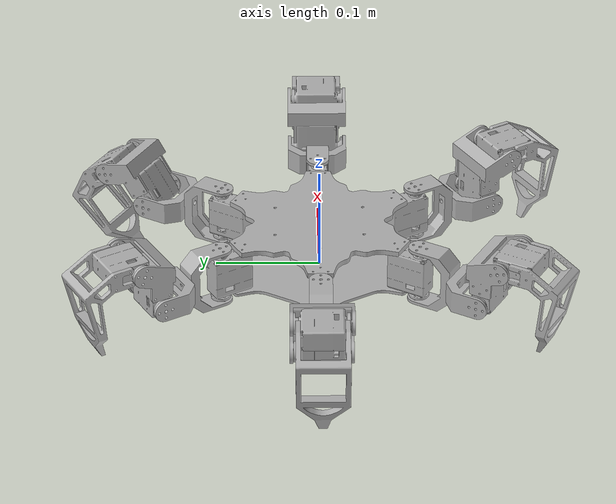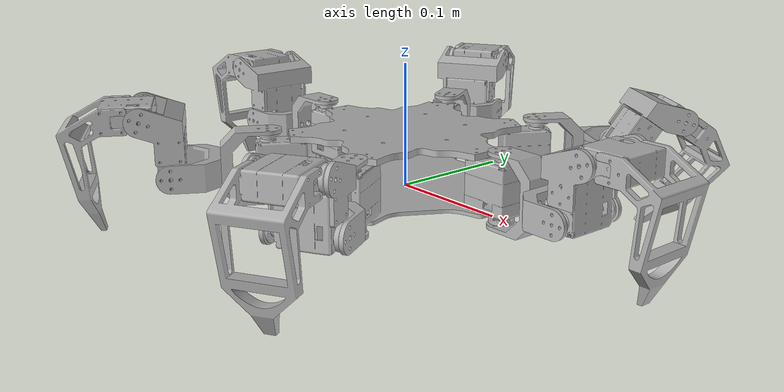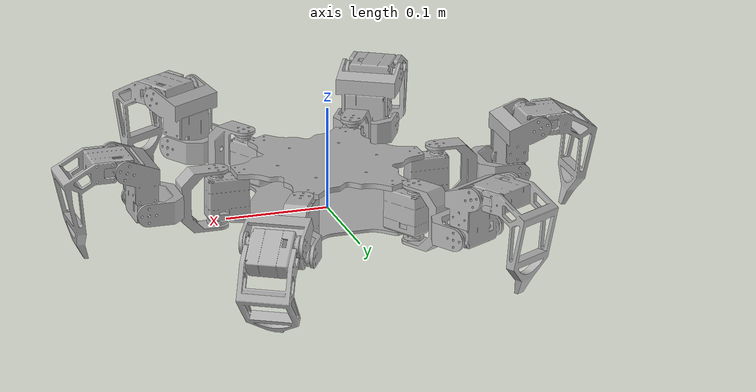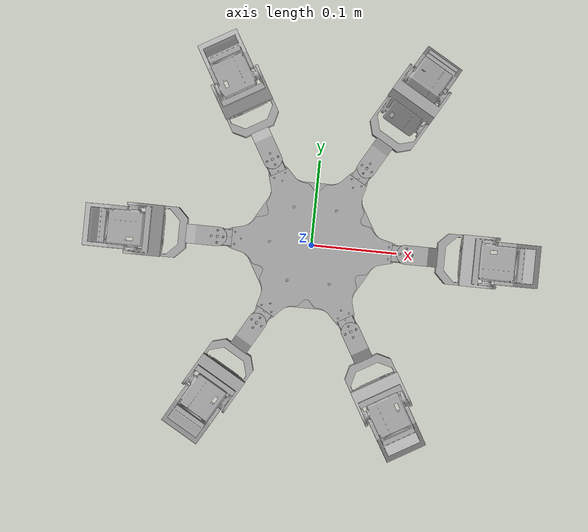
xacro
<?xml version="1.0" ?>
<robot name="assembly_Final_urdf_made_of" xmlns:xacro="http://www.ros.org/wiki/xacro">

<xacro:include filename="$(find assembly_Final_urdf_made_of_description)/urdf/materials.xacro" />
<xacro:include filename="$(find assembly_Final_urdf_made_of_description)/urdf/assembly_Final_urdf_made_of.trans" />
<xacro:include filename="$(find assembly_Final_urdf_made_of_description)/urdf/assembly_Final_urdf_made_of.gazebo" />
<link name="base_link">
  <inertial>
    <origin xyz="-1.7404090197208611e-06 2.397418554504474e-06 0.0008277383370028244" rpy="0 0 0"/>
    <mass value="0.09456404470336192"/>
    <inertia ixx="0.000152" iyy="0.000152" izz="0.000303" ixy="0.0" iyz="-0.0" ixz="0.0"/>
  </inertial>
  <visual>
    <origin xyz="0 0 0" rpy="0 0 0"/>
    <geometry>
      <mesh filename="package://assembly_Final_urdf_made_of_description/meshes/base_link.stl" scale="0.001 0.001 0.001"/>
    </geometry>
    <material name="silver"/>
  </visual>
  <collision>
    <origin xyz="0 0 0" rpy="0 0 0"/>
    <geometry>
      <mesh filename="package://assembly_Final_urdf_made_of_description/meshes/base_link.stl" scale="0.001 0.001 0.001"/>
    </geometry>
  </collision>
</link>

<link name="Fixed_joint_1_2__v3_1">
  <inertial>
    <origin xyz="0.010972805738787339 0.010956586754343384 5.977675751611677e-08" rpy="0 0 0"/>
    <mass value="0.011256598883823797"/>
    <inertia ixx="3e-06" iyy="5e-06" izz="7e-06" ixy="1e-06" iyz="0.0" ixz="0.0"/>
  </inertial>
  <visual>
    <origin xyz="-0.069586 -0.128526 -0.02295" rpy="0 0 0"/>
    <geometry>
      <mesh filename="package://assembly_Final_urdf_made_of_description/meshes/Fixed_joint_1_2__v3_1.stl" scale="0.001 0.001 0.001"/>
    </geometry>
    <material name="silver"/>
  </visual>
  <collision>
    <origin xyz="-0.069586 -0.128526 -0.02295" rpy="0 0 0"/>
    <geometry>
      <mesh filename="package://assembly_Final_urdf_made_of_description/meshes/Fixed_joint_1_2__v3_1.stl" scale="0.001 0.001 0.001"/>
    </geometry>
  </collision>
</link>

<link name="motor_1">
  <inertial>
    <origin xyz="-0.018338093053048496 0.01677782396606542 0.007656049817158811" rpy="0 0 0"/>
    <mass value="0.07982237365097052"/>
    <inertia ixx="1.5e-05" iyy="1.8e-05" izz="1.6e-05" ixy="2e-06" iyz="-3e-06" ixz="-2e-06"/>
  </inertial>
  <visual>
    <origin xyz="-0.11437 -0.145394 -0.02295" rpy="0 0 0"/>
    <geometry>
      <mesh filename="package://assembly_Final_urdf_made_of_description/meshes/motor_1.stl" scale="0.001 0.001 0.001"/>
    </geometry>
    <material name="silver"/>
  </visual>
  <collision>
    <origin xyz="-0.11437 -0.145394 -0.02295" rpy="0 0 0"/>
    <geometry>
      <mesh filename="package://assembly_Final_urdf_made_of_description/meshes/motor_1.stl" scale="0.001 0.001 0.001"/>
    </geometry>
  </collision>
</link>

<link name="Joint_2_v7_1">
  <inertial>
    <origin xyz="-0.00945987008689668 0.025185382841864723 0.009101924812263344" rpy="0 0 0"/>
    <mass value="0.014244669754106336"/>
    <inertia ixx="4e-06" iyy="7e-06" izz="8e-06" ixy="2e-06" iyz="0.0" ixz="-0.0"/>
  </inertial>
  <visual>
    <origin xyz="-0.111615 -0.153623 -0.043365" rpy="0 0 0"/>
    <geometry>
      <mesh filename="package://assembly_Final_urdf_made_of_description/meshes/Joint_2_v7_1.stl" scale="0.001 0.001 0.001"/>
    </geometry>
    <material name="silver"/>
  </visual>
  <collision>
    <origin xyz="-0.111615 -0.153623 -0.043365" rpy="0 0 0"/>
    <geometry>
      <mesh filename="package://assembly_Final_urdf_made_of_description/meshes/Joint_2_v7_1.stl" scale="0.001 0.001 0.001"/>
    </geometry>
  </collision>
</link>

<link name="fixed_joint_2_1">
  <inertial>
    <origin xyz="0.011012566806815144 0.0190746967865109 -0.026374619114394995" rpy="0 0 0"/>
    <mass value="0.011256598883823797"/>
    <inertia ixx="7e-06" iyy="6e-06" izz="3e-06" ixy="-1e-06" iyz="-0.0" ixz="-0.0"/>
  </inertial>
  <visual>
    <origin xyz="-0.05455 -0.094483 -0.0493" rpy="0 0 0"/>
    <geometry>
      <mesh filename="package://assembly_Final_urdf_made_of_description/meshes/fixed_joint_2_1.stl" scale="0.001 0.001 0.001"/>
    </geometry>
    <material name="silver"/>
  </visual>
  <collision>
    <origin xyz="-0.05455 -0.094483 -0.0493" rpy="0 0 0"/>
    <geometry>
      <mesh filename="package://assembly_Final_urdf_made_of_description/meshes/fixed_joint_2_1.stl" scale="0.001 0.001 0.001"/>
    </geometry>
  </collision>
</link>

<link name="motor_2">
  <inertial>
    <origin xyz="-0.01719037699469063 0.018765054863949443 -0.005361299149472275" rpy="0 0 0"/>
    <mass value="0.07982237365097052"/>
    <inertia ixx="1.4e-05" iyy="1.6e-05" izz="1.9e-05" ixy="1e-06" iyz="3e-06" ixz="2e-06"/>
  </inertial>
  <visual>
    <origin xyz="-0.135634 -0.182625 -0.048627" rpy="0 0 0"/>
    <geometry>
      <mesh filename="package://assembly_Final_urdf_made_of_description/meshes/motor_2.stl" scale="0.001 0.001 0.001"/>
    </geometry>
    <material name="silver"/>
  </visual>
  <collision>
    <origin xyz="-0.135634 -0.182625 -0.048627" rpy="0 0 0"/>
    <geometry>
      <mesh filename="package://assembly_Final_urdf_made_of_description/meshes/motor_2.stl" scale="0.001 0.001 0.001"/>
    </geometry>
  </collision>
</link>

<link name="leg_final_final_final_v2_1">
  <inertial>
    <origin xyz="-0.019518933007596523 0.006065157536419535 -0.033090882230042445" rpy="0 0 0"/>
    <mass value="0.020390738062841383"/>
    <inertia ixx="1.8e-05" iyy="1.7e-05" izz="1.2e-05" ixy="-0.0" iyz="-5e-06" ixz="-3e-06"/>
  </inertial>
  <visual>
    <origin xyz="-0.141072 -0.205043 -0.033129" rpy="0 0 0"/>
    <geometry>
      <mesh filename="package://assembly_Final_urdf_made_of_description/meshes/leg_final_final_final_v2_1.stl" scale="0.001 0.001 0.001"/>
    </geometry>
    <material name="silver"/>
  </visual>
  <collision>
    <origin xyz="-0.141072 -0.205043 -0.033129" rpy="0 0 0"/>
    <geometry>
      <mesh filename="package://assembly_Final_urdf_made_of_description/meshes/leg_final_final_final_v2_1.stl" scale="0.001 0.001 0.001"/>
    </geometry>
  </collision>
</link>

<link name="base_link_motor_1">
  <inertial>
    <origin xyz="0.002581790431811941 0.019471284014795517 0.022030159006889604" rpy="0 0 0"/>
    <mass value="0.07982237365097052"/>
    <inertia ixx="2e-05" iyy="1.6e-05" izz="1.3e-05" ixy="-4e-06" iyz="0.0" ixz="0.0"/>
  </inertial>
  <visual>
    <origin xyz="-0.047295 -0.066918 -0.003" rpy="0 0 0"/>
    <geometry>
      <mesh filename="package://assembly_Final_urdf_made_of_description/meshes/base_link_motor_1.stl" scale="0.001 0.001 0.001"/>
    </geometry>
    <material name="silver"/>
  </visual>
  <collision>
    <origin xyz="-0.047295 -0.066918 -0.003" rpy="0 0 0"/>
    <geometry>
      <mesh filename="package://assembly_Final_urdf_made_of_description/meshes/base_link_motor_1.stl" scale="0.001 0.001 0.001"/>
    </geometry>
  </collision>
</link>

<link name="base_link_motor_2">
  <inertial>
    <origin xyz="-0.015571919355655897 0.01197120958057929 0.02223015900688976" rpy="0 0 0"/>
    <mass value="0.07982237365097052"/>
    <inertia ixx="2e-05" iyy="1.6e-05" izz="1.3e-05" ixy="4e-06" iyz="0.0" ixz="-0.0"/>
  </inertial>
  <visual>
    <origin xyz="0.034305 -0.074418 -0.003" rpy="0 0 0"/>
    <geometry>
      <mesh filename="package://assembly_Final_urdf_made_of_description/meshes/base_link_motor_2.stl" scale="0.001 0.001 0.001"/>
    </geometry>
    <material name="silver"/>
  </visual>
  <collision>
    <origin xyz="0.034305 -0.074418 -0.003" rpy="0 0 0"/>
    <geometry>
      <mesh filename="package://assembly_Final_urdf_made_of_description/meshes/base_link_motor_2.stl" scale="0.001 0.001 0.001"/>
    </geometry>
  </collision>
</link>

<link name="base_link_motor_3">
  <inertial>
    <origin xyz="-0.01815370978746779 -0.007500074434216389 0.022230159006889492" rpy="0 0 0"/>
    <mass value="0.07982237365097052"/>
    <inertia ixx="1.4e-05" iyy="2.2e-05" izz="1.3e-05" ixy="0.0" iyz="-0.0" ixz="-0.0"/>
  </inertial>
  <visual>
    <origin xyz="0.0816 -0.0075 -0.003" rpy="0 0 0"/>
    <geometry>
      <mesh filename="package://assembly_Final_urdf_made_of_description/meshes/base_link_motor_3.stl" scale="0.001 0.001 0.001"/>
    </geometry>
    <material name="silver"/>
  </visual>
  <collision>
    <origin xyz="0.0816 -0.0075 -0.003" rpy="0 0 0"/>
    <geometry>
      <mesh filename="package://assembly_Final_urdf_made_of_description/meshes/base_link_motor_3.stl" scale="0.001 0.001 0.001"/>
    </geometry>
  </collision>
</link>

<link name="base_link_motor_4">
  <inertial>
    <origin xyz="-0.015571790431811977 -0.011971284014795608 0.02223015900688932" rpy="0 0 0"/>
    <mass value="0.07982237365097052"/>
    <inertia ixx="2e-05" iyy="1.6e-05" izz="1.3e-05" ixy="-4e-06" iyz="-0.0" ixz="-0.0"/>
  </inertial>
  <visual>
    <origin xyz="0.034305 0.074418 -0.003" rpy="0 0 0"/>
    <geometry>
      <mesh filename="package://assembly_Final_urdf_made_of_description/meshes/base_link_motor_4.stl" scale="0.001 0.001 0.001"/>
    </geometry>
    <material name="silver"/>
  </visual>
  <collision>
    <origin xyz="0.034305 0.074418 -0.003" rpy="0 0 0"/>
    <geometry>
      <mesh filename="package://assembly_Final_urdf_made_of_description/meshes/base_link_motor_4.stl" scale="0.001 0.001 0.001"/>
    </geometry>
  </collision>
</link>

<link name="base_link_motor_5">
  <inertial>
    <origin xyz="0.0025819193556557984 -0.019471209580579282 0.0222301590068896" rpy="0 0 0"/>
    <mass value="0.07982237365097052"/>
    <inertia ixx="2e-05" iyy="1.6e-05" izz="1.3e-05" ixy="4e-06" iyz="-0.0" ixz="0.0"/>
  </inertial>
  <visual>
    <origin xyz="-0.047295 0.066918 -0.003" rpy="0 0 0"/>
    <geometry>
      <mesh filename="package://assembly_Final_urdf_made_of_description/meshes/base_link_motor_5.stl" scale="0.001 0.001 0.001"/>
    </geometry>
    <material name="silver"/>
  </visual>
  <collision>
    <origin xyz="-0.047295 0.066918 -0.003" rpy="0 0 0"/>
    <geometry>
      <mesh filename="package://assembly_Final_urdf_made_of_description/meshes/base_link_motor_5.stl" scale="0.001 0.001 0.001"/>
    </geometry>
  </collision>
</link>

<link name="base_link_motor_6">
  <inertial>
    <origin xyz="0.018153709787467803 -0.007499925565783629 0.022230159006889502" rpy="0 0 0"/>
    <mass value="0.07982237365097052"/>
    <inertia ixx="1.4e-05" iyy="2.2e-05" izz="1.3e-05" ixy="0.0" iyz="0.0" ixz="0.0"/>
  </inertial>
  <visual>
    <origin xyz="-0.0816 -0.0075 -0.003" rpy="0 0 0"/>
    <geometry>
      <mesh filename="package://assembly_Final_urdf_made_of_description/meshes/base_link_motor_6.stl" scale="0.001 0.001 0.001"/>
    </geometry>
    <material name="silver"/>
  </visual>
  <collision>
    <origin xyz="-0.0816 -0.0075 -0.003" rpy="0 0 0"/>
    <geometry>
      <mesh filename="package://assembly_Final_urdf_made_of_description/meshes/base_link_motor_6.stl" scale="0.001 0.001 0.001"/>
    </geometry>
  </collision>
</link>

<link name="fixed_joint_2_6">
  <inertial>
    <origin xyz="0.022025133615776515 1.2398237991817496e-12 -0.02637461911439507" rpy="0 0 0"/>
    <mass value="0.011256598883823797"/>
    <inertia ixx="6e-06" iyy="7e-06" izz="3e-06" ixy="-0.0" iyz="-0.0" ixz="-0.0"/>
  </inertial>
  <visual>
    <origin xyz="-0.1091 0.0 -0.0495" rpy="0 0 0"/>
    <geometry>
      <mesh filename="package://assembly_Final_urdf_made_of_description/meshes/fixed_joint_2_6.stl" scale="0.001 0.001 0.001"/>
    </geometry>
    <material name="silver"/>
  </visual>
  <collision>
    <origin xyz="-0.1091 0.0 -0.0495" rpy="0 0 0"/>
    <geometry>
      <mesh filename="package://assembly_Final_urdf_made_of_description/meshes/fixed_joint_2_6.stl" scale="0.001 0.001 0.001"/>
    </geometry>
  </collision>
</link>

<link name="fixed_joint_2_5">
  <inertial>
    <origin xyz="0.011012566808961316 -0.019074696785271378 -0.02637461911439472" rpy="0 0 0"/>
    <mass value="0.011256598883823797"/>
    <inertia ixx="7e-06" iyy="6e-06" izz="3e-06" ixy="1e-06" iyz="0.0" ixz="-0.0"/>
  </inertial>
  <visual>
    <origin xyz="-0.05455 0.094483 -0.0495" rpy="0 0 0"/>
    <geometry>
      <mesh filename="package://assembly_Final_urdf_made_of_description/meshes/fixed_joint_2_5.stl" scale="0.001 0.001 0.001"/>
    </geometry>
    <material name="silver"/>
  </visual>
  <collision>
    <origin xyz="-0.05455 0.094483 -0.0495" rpy="0 0 0"/>
    <geometry>
      <mesh filename="package://assembly_Final_urdf_made_of_description/meshes/fixed_joint_2_5.stl" scale="0.001 0.001 0.001"/>
    </geometry>
  </collision>
</link>

<link name="fixed_joint_2_4">
  <inertial>
    <origin xyz="-0.011012566806815074 -0.01907469678651111 -0.026374619114395238" rpy="0 0 0"/>
    <mass value="0.011256598883823797"/>
    <inertia ixx="7e-06" iyy="6e-06" izz="3e-06" ixy="-1e-06" iyz="0.0" ixz="0.0"/>
  </inertial>
  <visual>
    <origin xyz="0.05455 0.094483 -0.0495" rpy="0 0 0"/>
    <geometry>
      <mesh filename="package://assembly_Final_urdf_made_of_description/meshes/fixed_joint_2_4.stl" scale="0.001 0.001 0.001"/>
    </geometry>
    <material name="silver"/>
  </visual>
  <collision>
    <origin xyz="0.05455 0.094483 -0.0495" rpy="0 0 0"/>
    <geometry>
      <mesh filename="package://assembly_Final_urdf_made_of_description/meshes/fixed_joint_2_4.stl" scale="0.001 0.001 0.001"/>
    </geometry>
  </collision>
</link>

<link name="fixed_joint_2_3">
  <inertial>
    <origin xyz="-0.022025133615776515 -1.2398482240882913e-12 -0.026374619114395044" rpy="0 0 0"/>
    <mass value="0.011256598883823797"/>
    <inertia ixx="6e-06" iyy="7e-06" izz="3e-06" ixy="-0.0" iyz="0.0" ixz="0.0"/>
  </inertial>
  <visual>
    <origin xyz="0.1091 0.0 -0.0495" rpy="0 0 0"/>
    <geometry>
      <mesh filename="package://assembly_Final_urdf_made_of_description/meshes/fixed_joint_2_3.stl" scale="0.001 0.001 0.001"/>
    </geometry>
    <material name="silver"/>
  </visual>
  <collision>
    <origin xyz="0.1091 0.0 -0.0495" rpy="0 0 0"/>
    <geometry>
      <mesh filename="package://assembly_Final_urdf_made_of_description/meshes/fixed_joint_2_3.stl" scale="0.001 0.001 0.001"/>
    </geometry>
  </collision>
</link>

<link name="fixed_joint_2_2">
  <inertial>
    <origin xyz="-0.011012566808961441 0.019074696785271475 -0.02637461911439456" rpy="0 0 0"/>
    <mass value="0.011256598883823797"/>
    <inertia ixx="7e-06" iyy="6e-06" izz="3e-06" ixy="1e-06" iyz="-0.0" ixz="0.0"/>
  </inertial>
  <visual>
    <origin xyz="0.05455 -0.094483 -0.0495" rpy="0 0 0"/>
    <geometry>
      <mesh filename="package://assembly_Final_urdf_made_of_description/meshes/fixed_joint_2_2.stl" scale="0.001 0.001 0.001"/>
    </geometry>
    <material name="silver"/>
  </visual>
  <collision>
    <origin xyz="0.05455 -0.094483 -0.0495" rpy="0 0 0"/>
    <geometry>
      <mesh filename="package://assembly_Final_urdf_made_of_description/meshes/fixed_joint_2_2.stl" scale="0.001 0.001 0.001"/>
    </geometry>
  </collision>
</link>

<link name="Fixed_joint_1_2__v3_6">
  <inertial>
    <origin xyz="0.01497486638422238 0.0039753208853297705 5.977675755775014e-08" rpy="0 0 0"/>
    <mass value="0.011256598883823797"/>
    <inertia ixx="6e-06" iyy="3e-06" izz="7e-06" ixy="0.0" iyz="0.0" ixz="0.0"/>
  </inertial>
  <visual>
    <origin xyz="-0.1461 0.004 -0.02315" rpy="0 0 0"/>
    <geometry>
      <mesh filename="package://assembly_Final_urdf_made_of_description/meshes/Fixed_joint_1_2__v3_6.stl" scale="0.001 0.001 0.001"/>
    </geometry>
    <material name="silver"/>
  </visual>
  <collision>
    <origin xyz="-0.1461 0.004 -0.02315" rpy="0 0 0"/>
    <geometry>
      <mesh filename="package://assembly_Final_urdf_made_of_description/meshes/Fixed_joint_1_2__v3_6.stl" scale="0.001 0.001 0.001"/>
    </geometry>
  </collision>
</link>

<link name="Fixed_joint_1_2__v3_5">
  <inertial>
    <origin xyz="0.010930060451863191 -0.01098126575725572 5.977675810245331e-08" rpy="0 0 0"/>
    <mass value="0.011256598883823797"/>
    <inertia ixx="3e-06" iyy="5e-06" izz="7e-06" ixy="-1e-06" iyz="0.0" ixz="0.0"/>
  </inertial>
  <visual>
    <origin xyz="-0.069586 0.128526 -0.02315" rpy="0 0 0"/>
    <geometry>
      <mesh filename="package://assembly_Final_urdf_made_of_description/meshes/Fixed_joint_1_2__v3_5.stl" scale="0.001 0.001 0.001"/>
    </geometry>
    <material name="silver"/>
  </visual>
  <collision>
    <origin xyz="-0.069586 0.128526 -0.02315" rpy="0 0 0"/>
    <geometry>
      <mesh filename="package://assembly_Final_urdf_made_of_description/meshes/Fixed_joint_1_2__v3_5.stl" scale="0.001 0.001 0.001"/>
    </geometry>
  </collision>
</link>

<link name="Fixed_joint_1_2__v3_4">
  <inertial>
    <origin xyz="-0.00404480593235905 -0.014956586642585423 5.977675746754452e-08" rpy="0 0 0"/>
    <mass value="0.011256598883823797"/>
    <inertia ixx="3e-06" iyy="5e-06" izz="7e-06" ixy="1e-06" iyz="0.0" ixz="-0.0"/>
  </inertial>
  <visual>
    <origin xyz="0.076514 0.124526 -0.02315" rpy="0 0 0"/>
    <geometry>
      <mesh filename="package://assembly_Final_urdf_made_of_description/meshes/Fixed_joint_1_2__v3_4.stl" scale="0.001 0.001 0.001"/>
    </geometry>
    <material name="silver"/>
  </visual>
  <collision>
    <origin xyz="0.076514 0.124526 -0.02315" rpy="0 0 0"/>
    <geometry>
      <mesh filename="package://assembly_Final_urdf_made_of_description/meshes/Fixed_joint_1_2__v3_4.stl" scale="0.001 0.001 0.001"/>
    </geometry>
  </collision>
</link>

<link name="Fixed_joint_1_2__v3_3">
  <inertial>
    <origin xyz="-0.014974866384222324 -0.003975320885329802 5.977675756468903e-08" rpy="0 0 0"/>
    <mass value="0.011256598883823797"/>
    <inertia ixx="6e-06" iyy="3e-06" izz="7e-06" ixy="0.0" iyz="-0.0" ixz="-0.0"/>
  </inertial>
  <visual>
    <origin xyz="0.1461 -0.004 -0.02315" rpy="0 0 0"/>
    <geometry>
      <mesh filename="package://assembly_Final_urdf_made_of_description/meshes/Fixed_joint_1_2__v3_3.stl" scale="0.001 0.001 0.001"/>
    </geometry>
    <material name="silver"/>
  </visual>
  <collision>
    <origin xyz="0.1461 -0.004 -0.02315" rpy="0 0 0"/>
    <geometry>
      <mesh filename="package://assembly_Final_urdf_made_of_description/meshes/Fixed_joint_1_2__v3_3.stl" scale="0.001 0.001 0.001"/>
    </geometry>
  </collision>
</link>

<link name="Fixed_joint_1_2__v3_2">
  <inertial>
    <origin xyz="-0.010930060451863288 0.010981265757255804 5.977675827592566e-08" rpy="0 0 0"/>
    <mass value="0.011256598883823797"/>
    <inertia ixx="3e-06" iyy="5e-06" izz="7e-06" ixy="-1e-06" iyz="0.0" ixz="-0.0"/>
  </inertial>
  <visual>
    <origin xyz="0.069586 -0.128526 -0.02315" rpy="0 0 0"/>
    <geometry>
      <mesh filename="package://assembly_Final_urdf_made_of_description/meshes/Fixed_joint_1_2__v3_2.stl" scale="0.001 0.001 0.001"/>
    </geometry>
    <material name="silver"/>
  </visual>
  <collision>
    <origin xyz="0.069586 -0.128526 -0.02315" rpy="0 0 0"/>
    <geometry>
      <mesh filename="package://assembly_Final_urdf_made_of_description/meshes/Fixed_joint_1_2__v3_2.stl" scale="0.001 0.001 0.001"/>
    </geometry>
  </collision>
</link>

<link name="motor_12">
  <inertial>
    <origin xyz="7.44342152081412e-08 -0.027930219007164792 0.009346349989289817" rpy="0 0 0"/>
    <mass value="0.07982237365097052"/>
    <inertia ixx="2.2e-05" iyy="1.3e-05" izz="1.4e-05" ixy="-0.0" iyz="0.0" ixz="-0.0"/>
  </inertial>
  <visual>
    <origin xyz="-0.1831 -0.02635 -0.02315" rpy="0 0 0"/>
    <geometry>
      <mesh filename="package://assembly_Final_urdf_made_of_description/meshes/motor_12.stl" scale="0.001 0.001 0.001"/>
    </geometry>
    <material name="silver"/>
  </visual>
  <collision>
    <origin xyz="-0.1831 -0.02635 -0.02315" rpy="0 0 0"/>
    <geometry>
      <mesh filename="package://assembly_Final_urdf_made_of_description/meshes/motor_12.stl" scale="0.001 0.001 0.001"/>
    </geometry>
  </collision>
</link>

<link name="motor_10">
  <inertial>
    <origin xyz="-0.024188472586640808 -0.013965425398434372 0.009346349989290414" rpy="0 0 0"/>
    <mass value="0.07982237365097052"/>
    <inertia ixx="1.6e-05" iyy="2e-05" izz="1.4e-05" ixy="-4e-06" iyz="0.0" ixz="0.0"/>
  </inertial>
  <visual>
    <origin xyz="-0.11437 0.145394 -0.02315" rpy="0 0 0"/>
    <geometry>
      <mesh filename="package://assembly_Final_urdf_made_of_description/meshes/motor_10.stl" scale="0.001 0.001 0.001"/>
    </geometry>
    <material name="silver"/>
  </visual>
  <collision>
    <origin xyz="-0.11437 0.145394 -0.02315" rpy="0 0 0"/>
    <geometry>
      <mesh filename="package://assembly_Final_urdf_made_of_description/meshes/motor_10.stl" scale="0.001 0.001 0.001"/>
    </geometry>
  </collision>
</link>

<link name="motor_8">
  <inertial>
    <origin xyz="-0.02418854702085596 0.013964793608730514 0.009346349989289699" rpy="0 0 0"/>
    <mass value="0.07982237365097052"/>
    <inertia ixx="1.6e-05" iyy="2e-05" izz="1.4e-05" ixy="4e-06" iyz="-0.0" ixz="0.0"/>
  </inertial>
  <visual>
    <origin xyz="0.06873 0.171744 -0.02315" rpy="0 0 0"/>
    <geometry>
      <mesh filename="package://assembly_Final_urdf_made_of_description/meshes/motor_8.stl" scale="0.001 0.001 0.001"/>
    </geometry>
    <material name="silver"/>
  </visual>
  <collision>
    <origin xyz="0.06873 0.171744 -0.02315" rpy="0 0 0"/>
    <geometry>
      <mesh filename="package://assembly_Final_urdf_made_of_description/meshes/motor_8.stl" scale="0.001 0.001 0.001"/>
    </geometry>
  </collision>
</link>

<link name="motor_6">
  <inertial>
    <origin xyz="-7.443421529140792e-08 0.027930219007164785 0.00934634998928974" rpy="0 0 0"/>
    <mass value="0.07982237365097052"/>
    <inertia ixx="2.2e-05" iyy="1.3e-05" izz="1.4e-05" ixy="-0.0" iyz="-0.0" ixz="0.0"/>
  </inertial>
  <visual>
    <origin xyz="0.1831 0.02635 -0.02315" rpy="0 0 0"/>
    <geometry>
      <mesh filename="package://assembly_Final_urdf_made_of_description/meshes/motor_6.stl" scale="0.001 0.001 0.001"/>
    </geometry>
    <material name="silver"/>
  </visual>
  <collision>
    <origin xyz="0.1831 0.02635 -0.02315" rpy="0 0 0"/>
    <geometry>
      <mesh filename="package://assembly_Final_urdf_made_of_description/meshes/motor_6.stl" scale="0.001 0.001 0.001"/>
    </geometry>
  </collision>
</link>

<link name="motor_4">
  <inertial>
    <origin xyz="0.02418847258664078 0.013965425398434345 0.009346349989290573" rpy="0 0 0"/>
    <mass value="0.07982237365097052"/>
    <inertia ixx="1.6e-05" iyy="2e-05" izz="1.4e-05" ixy="-4e-06" iyz="-0.0" ixz="-0.0"/>
  </inertial>
  <visual>
    <origin xyz="0.11437 -0.145394 -0.02315" rpy="0 0 0"/>
    <geometry>
      <mesh filename="package://assembly_Final_urdf_made_of_description/meshes/motor_4.stl" scale="0.001 0.001 0.001"/>
    </geometry>
    <material name="silver"/>
  </visual>
  <collision>
    <origin xyz="0.11437 -0.145394 -0.02315" rpy="0 0 0"/>
    <geometry>
      <mesh filename="package://assembly_Final_urdf_made_of_description/meshes/motor_4.stl" scale="0.001 0.001 0.001"/>
    </geometry>
  </collision>
</link>

<link name="Joint_2_v7_2">
  <inertial>
    <origin xyz="0.012437498716422149 0.017886558222365567 0.008773705887538806" rpy="0 0 0"/>
    <mass value="0.014244669754106336"/>
    <inertia ixx="4e-06" iyy="7e-06" izz="8e-06" ixy="-2e-06" iyz="-0.0" ixz="-0.0"/>
  </inertial>
  <visual>
    <origin xyz="0.105683 -0.141749 -0.05065" rpy="0 0 0"/>
    <geometry>
      <mesh filename="package://assembly_Final_urdf_made_of_description/meshes/Joint_2_v7_2.stl" scale="0.001 0.001 0.001"/>
    </geometry>
    <material name="silver"/>
  </visual>
  <collision>
    <origin xyz="0.105683 -0.141749 -0.05065" rpy="0 0 0"/>
    <geometry>
      <mesh filename="package://assembly_Final_urdf_made_of_description/meshes/Joint_2_v7_2.stl" scale="0.001 0.001 0.001"/>
    </geometry>
  </collision>
</link>

<link name="Joint_2_v7_3">
  <inertial>
    <origin xyz="-0.009271199409668168 0.019714806210989276 0.008773705887537876" rpy="0 0 0"/>
    <mass value="0.014244669754106336"/>
    <inertia ixx="8e-06" iyy="3e-06" izz="8e-06" ixy="0.0" iyz="-0.0" ixz="0.0"/>
  </inertial>
  <visual>
    <origin xyz="0.1756 0.02065 -0.05065" rpy="0 0 0"/>
    <geometry>
      <mesh filename="package://assembly_Final_urdf_made_of_description/meshes/Joint_2_v7_3.stl" scale="0.001 0.001 0.001"/>
    </geometry>
    <material name="silver"/>
  </visual>
  <collision>
    <origin xyz="0.1756 0.02065 -0.05065" rpy="0 0 0"/>
    <geometry>
      <mesh filename="package://assembly_Final_urdf_made_of_description/meshes/Joint_2_v7_3.stl" scale="0.001 0.001 0.001"/>
    </geometry>
  </collision>
</link>

<link name="Joint_2_v7_4">
  <inertial>
    <origin xyz="-0.02170869812608997 0.0018282479886237435 0.008773705887537925" rpy="0 0 0"/>
    <mass value="0.014244669754106336"/>
    <inertia ixx="4e-06" iyy="7e-06" izz="8e-06" ixy="2e-06" iyz="0.0" ixz="0.0"/>
  </inertial>
  <visual>
    <origin xyz="0.069917 0.162399 -0.05065" rpy="0 0 0"/>
    <geometry>
      <mesh filename="package://assembly_Final_urdf_made_of_description/meshes/Joint_2_v7_4.stl" scale="0.001 0.001 0.001"/>
    </geometry>
    <material name="silver"/>
  </visual>
  <collision>
    <origin xyz="0.069917 0.162399 -0.05065" rpy="0 0 0"/>
    <geometry>
      <mesh filename="package://assembly_Final_urdf_made_of_description/meshes/Joint_2_v7_4.stl" scale="0.001 0.001 0.001"/>
    </geometry>
  </collision>
</link>

<link name="Joint_2_v7_5">
  <inertial>
    <origin xyz="-0.012437498716422135 -0.017886558222365623 0.008773705887538605" rpy="0 0 0"/>
    <mass value="0.014244669754106336"/>
    <inertia ixx="4e-06" iyy="7e-06" izz="8e-06" ixy="-2e-06" iyz="0.0" ixz="0.0"/>
  </inertial>
  <visual>
    <origin xyz="-0.105683 0.141749 -0.05065" rpy="0 0 0"/>
    <geometry>
      <mesh filename="package://assembly_Final_urdf_made_of_description/meshes/Joint_2_v7_5.stl" scale="0.001 0.001 0.001"/>
    </geometry>
    <material name="silver"/>
  </visual>
  <collision>
    <origin xyz="-0.105683 0.141749 -0.05065" rpy="0 0 0"/>
    <geometry>
      <mesh filename="package://assembly_Final_urdf_made_of_description/meshes/Joint_2_v7_5.stl" scale="0.001 0.001 0.001"/>
    </geometry>
  </collision>
</link>

<link name="Joint_2_v7_6">
  <inertial>
    <origin xyz="0.009271199409667835 -0.019714806210989286 0.008773705887537925" rpy="0 0 0"/>
    <mass value="0.014244669754106336"/>
    <inertia ixx="8e-06" iyy="3e-06" izz="8e-06" ixy="0.0" iyz="0.0" ixz="-0.0"/>
  </inertial>
  <visual>
    <origin xyz="-0.1756 -0.02065 -0.05065" rpy="0 0 0"/>
    <geometry>
      <mesh filename="package://assembly_Final_urdf_made_of_description/meshes/Joint_2_v7_6.stl" scale="0.001 0.001 0.001"/>
    </geometry>
    <material name="silver"/>
  </visual>
  <collision>
    <origin xyz="-0.1756 -0.02065 -0.05065" rpy="0 0 0"/>
    <geometry>
      <mesh filename="package://assembly_Final_urdf_made_of_description/meshes/Joint_2_v7_6.stl" scale="0.001 0.001 0.001"/>
    </geometry>
  </collision>
</link>

<link name="motor_9">
  <inertial>
    <origin xyz="0.02569156523859202 0.004041246787759106 -1.1382225389988676e-07" rpy="0 0 0"/>
    <mass value="0.07982237365097052"/>
    <inertia ixx="1.4e-05" iyy="1.4e-05" izz="2.2e-05" ixy="-0.0" iyz="-0.0" ixz="0.0"/>
  </inertial>
  <visual>
    <origin xyz="-0.0791 0.189306 -0.067775" rpy="0 0 0"/>
    <geometry>
      <mesh filename="package://assembly_Final_urdf_made_of_description/meshes/motor_9.stl" scale="0.001 0.001 0.001"/>
    </geometry>
    <material name="silver"/>
  </visual>
  <collision>
    <origin xyz="-0.0791 0.189306 -0.067775" rpy="0 0 0"/>
    <geometry>
      <mesh filename="package://assembly_Final_urdf_made_of_description/meshes/motor_9.stl" scale="0.001 0.001 0.001"/>
    </geometry>
  </collision>
</link>

<link name="motor_3">
  <inertial>
    <origin xyz="-0.025691565238591896 -0.004041246787759356 -1.1382225365008658e-07" rpy="0 0 0"/>
    <mass value="0.07982237365097052"/>
    <inertia ixx="1.4e-05" iyy="1.4e-05" izz="2.2e-05" ixy="-0.0" iyz="0.0" ixz="-0.0"/>
  </inertial>
  <visual>
    <origin xyz="0.0791 -0.189306 -0.067775" rpy="0 0 0"/>
    <geometry>
      <mesh filename="package://assembly_Final_urdf_made_of_description/meshes/motor_3.stl" scale="0.001 0.001 0.001"/>
    </geometry>
    <material name="silver"/>
  </visual>
  <collision>
    <origin xyz="0.0791 -0.189306 -0.067775" rpy="0 0 0"/>
    <geometry>
      <mesh filename="package://assembly_Final_urdf_made_of_description/meshes/motor_3.stl" scale="0.001 0.001 0.001"/>
    </geometry>
  </collision>
</link>

<link name="leg_final_final_final_v2_2">
  <inertial>
    <origin xyz="-0.024909525025283083 0.0032715525317545957 -0.029691034679900245" rpy="0 0 0"/>
    <mass value="0.020390738062841383"/>
    <inertia ixx="1.9e-05" iyy="2e-05" izz="8e-06" ixy="-1e-06" iyz="1e-06" ixz="-0.0"/>
  </inertial>
  <visual>
    <origin xyz="0.098239 -0.209456 -0.067775" rpy="0 0 0"/>
    <geometry>
      <mesh filename="package://assembly_Final_urdf_made_of_description/meshes/leg_final_final_final_v2_2.stl" scale="0.001 0.001 0.001"/>
    </geometry>
    <material name="silver"/>
  </visual>
  <collision>
    <origin xyz="0.098239 -0.209456 -0.067775" rpy="0 0 0"/>
    <geometry>
      <mesh filename="package://assembly_Final_urdf_made_of_description/meshes/leg_final_final_final_v2_2.stl" scale="0.001 0.001 0.001"/>
    </geometry>
  </collision>
</link>

<link name="motor_11">
  <inertial>
    <origin xyz="0.00934676532695164 0.024269780992835173 -1.1382225471867624e-07" rpy="0 0 0"/>
    <mass value="0.07982237365097052"/>
    <inertia ixx="1.4e-05" iyy="1.3e-05" izz="2.2e-05" ixy="0.0" iyz="0.0" ixz="0.0"/>
  </inertial>
  <visual>
    <origin xyz="-0.203493 0.02615 -0.067775" rpy="0 0 0"/>
    <geometry>
      <mesh filename="package://assembly_Final_urdf_made_of_description/meshes/motor_11.stl" scale="0.001 0.001 0.001"/>
    </geometry>
    <material name="silver"/>
  </visual>
  <collision>
    <origin xyz="-0.203493 0.02615 -0.067775" rpy="0 0 0"/>
    <geometry>
      <mesh filename="package://assembly_Final_urdf_made_of_description/meshes/motor_11.stl" scale="0.001 0.001 0.001"/>
    </geometry>
  </collision>
</link>

<link name="leg_final_final_final_v2_6">
  <inertial>
    <origin xyz="0.015288727090029958 0.019935974844602022 -0.02969103467990157" rpy="0 0 0"/>
    <mass value="0.020390738062841383"/>
    <inertia ixx="2.1e-05" iyy="1.8e-05" izz="8e-06" ixy="-0.0" iyz="-0.0" ixz="1e-06"/>
  </inertial>
  <visual>
    <origin xyz="-0.230513 0.01965 -0.067775" rpy="0 0 0"/>
    <geometry>
      <mesh filename="package://assembly_Final_urdf_made_of_description/meshes/leg_final_final_final_v2_6.stl" scale="0.001 0.001 0.001"/>
    </geometry>
    <material name="silver"/>
  </visual>
  <collision>
    <origin xyz="-0.230513 0.01965 -0.067775" rpy="0 0 0"/>
    <geometry>
      <mesh filename="package://assembly_Final_urdf_made_of_description/meshes/leg_final_final_final_v2_6.stl" scale="0.001 0.001 0.001"/>
    </geometry>
  </collision>
</link>

<link name="leg_final_final_final_v2_5">
  <inertial>
    <origin xyz="0.024909525025283097 -0.0032715525317547067 -0.029691034679900488" rpy="0 0 0"/>
    <mass value="0.020390738062841383"/>
    <inertia ixx="1.9e-05" iyy="2e-05" izz="8e-06" ixy="-1e-06" iyz="-1e-06" ixz="0.0"/>
  </inertial>
  <visual>
    <origin xyz="-0.098239 0.209456 -0.067775" rpy="0 0 0"/>
    <geometry>
      <mesh filename="package://assembly_Final_urdf_made_of_description/meshes/leg_final_final_final_v2_5.stl" scale="0.001 0.001 0.001"/>
    </geometry>
    <material name="silver"/>
  </visual>
  <collision>
    <origin xyz="-0.098239 0.209456 -0.067775" rpy="0 0 0"/>
    <geometry>
      <mesh filename="package://assembly_Final_urdf_made_of_description/meshes/leg_final_final_final_v2_5.stl" scale="0.001 0.001 0.001"/>
    </geometry>
  </collision>
</link>

<link name="motor_7">
  <inertial>
    <origin xyz="0.016344799911640326 -0.0202295342050757 -1.1382225459377615e-07" rpy="0 0 0"/>
    <mass value="0.07982237365097052"/>
    <inertia ixx="1.3e-05" iyy="1.4e-05" izz="2.2e-05" ixy="0.0" iyz="-0.0" ixz="0.0"/>
  </inertial>
  <visual>
    <origin xyz="0.124393 0.163155 -0.067775" rpy="0 0 0"/>
    <geometry>
      <mesh filename="package://assembly_Final_urdf_made_of_description/meshes/motor_7.stl" scale="0.001 0.001 0.001"/>
    </geometry>
    <material name="silver"/>
  </visual>
  <collision>
    <origin xyz="0.124393 0.163155 -0.067775" rpy="0 0 0"/>
    <geometry>
      <mesh filename="package://assembly_Final_urdf_made_of_description/meshes/motor_7.stl" scale="0.001 0.001 0.001"/>
    </geometry>
  </collision>
</link>

<link name="leg_final_final_final_v2_4">
  <inertial>
    <origin xyz="0.009620797935253028 -0.02320852737635637 -0.029691034679901383" rpy="0 0 0"/>
    <mass value="0.020390738062841383"/>
    <inertia ixx="1.9e-05" iyy="2e-05" izz="8e-06" ixy="1e-06" iyz="-1e-06" ixz="-0.0"/>
  </inertial>
  <visual>
    <origin xyz="0.132274 0.189805 -0.067775" rpy="0 0 0"/>
    <geometry>
      <mesh filename="package://assembly_Final_urdf_made_of_description/meshes/leg_final_final_final_v2_4.stl" scale="0.001 0.001 0.001"/>
    </geometry>
    <material name="silver"/>
  </visual>
  <collision>
    <origin xyz="0.132274 0.189805 -0.067775" rpy="0 0 0"/>
    <geometry>
      <mesh filename="package://assembly_Final_urdf_made_of_description/meshes/leg_final_final_final_v2_4.stl" scale="0.001 0.001 0.001"/>
    </geometry>
  </collision>
</link>

<link name="motor_5">
  <inertial>
    <origin xyz="-0.009346765326952056 -0.024269780992835194 -1.1382225477418739e-07" rpy="0 0 0"/>
    <mass value="0.07982237365097052"/>
    <inertia ixx="1.4e-05" iyy="1.3e-05" izz="2.2e-05" ixy="0.0" iyz="-0.0" ixz="-0.0"/>
  </inertial>
  <visual>
    <origin xyz="0.203493 -0.02615 -0.067775" rpy="0 0 0"/>
    <geometry>
      <mesh filename="package://assembly_Final_urdf_made_of_description/meshes/motor_5.stl" scale="0.001 0.001 0.001"/>
    </geometry>
    <material name="silver"/>
  </visual>
  <collision>
    <origin xyz="0.203493 -0.02615 -0.067775" rpy="0 0 0"/>
    <geometry>
      <mesh filename="package://assembly_Final_urdf_made_of_description/meshes/motor_5.stl" scale="0.001 0.001 0.001"/>
    </geometry>
  </collision>
</link>

<link name="leg_final_final_final_v2_3">
  <inertial>
    <origin xyz="-0.015288727090030457 -0.019935974844602078 -0.02969103467990159" rpy="0 0 0"/>
    <mass value="0.020390738062841383"/>
    <inertia ixx="2.1e-05" iyy="1.8e-05" izz="8e-06" ixy="-0.0" iyz="0.0" ixz="-1e-06"/>
  </inertial>
  <visual>
    <origin xyz="0.230513 -0.01965 -0.067775" rpy="0 0 0"/>
    <geometry>
      <mesh filename="package://assembly_Final_urdf_made_of_description/meshes/leg_final_final_final_v2_3.stl" scale="0.001 0.001 0.001"/>
    </geometry>
    <material name="silver"/>
  </visual>
  <collision>
    <origin xyz="0.230513 -0.01965 -0.067775" rpy="0 0 0"/>
    <geometry>
      <mesh filename="package://assembly_Final_urdf_made_of_description/meshes/leg_final_final_final_v2_3.stl" scale="0.001 0.001 0.001"/>
    </geometry>
  </collision>
</link>

<link name="base_top_2_v2_1">
  <inertial>
    <origin xyz="0.04103999999999869 0.07108299999999992 0.0024999999999999745" rpy="0 0 0"/>
    <mass value="0.10314360336964361"/>
    <inertia ixx="0.000172" iyy="0.000172" izz="0.000343" ixy="-0.0" iyz="-0.0" ixz="0.0"/>
  </inertial>
  <visual>
    <origin xyz="0.04104 0.071083 -0.043" rpy="0 0 0"/>
    <geometry>
      <mesh filename="package://assembly_Final_urdf_made_of_description/meshes/base_top_2_v2_1.stl" scale="0.001 0.001 0.001"/>
    </geometry>
    <material name="silver"/>
  </visual>
  <collision>
    <origin xyz="0.04104 0.071083 -0.043" rpy="0 0 0"/>
    <geometry>
      <mesh filename="package://assembly_Final_urdf_made_of_description/meshes/base_top_2_v2_1.stl" scale="0.001 0.001 0.001"/>
    </geometry>
  </collision>
</link>

<joint name="Rigid 2" type="fixed">
  <origin xyz="0.015036 0.034043 -0.02635" rpy="0 0 0"/>
  <parent link="fixed_joint_2_1"/>
  <child link="Fixed_joint_1_2__v3_1"/>
</joint>

<joint name="L1_2" type="continuous">
  <origin xyz="0.044784 0.016868 0.0" rpy="0 0 0"/>
  <parent link="Fixed_joint_1_2__v3_1"/>
  <child link="motor_1"/>
  <axis xyz="0.866025 -0.5 -0.0"/>
</joint>

<joint name="Rigid 4" type="fixed">
  <origin xyz="-0.002755 0.008229 0.020415" rpy="0 0 0"/>
  <parent link="motor_1"/>
  <child link="Joint_2_v7_1"/>
</joint>

<joint name="L1_1" type="continuous">
  <origin xyz="0.007255 0.027565 0.0463" rpy="0 0 0"/>
  <parent link="base_link_motor_1"/>
  <child link="fixed_joint_2_1"/>
  <axis xyz="0.0 -0.0 1.0"/>
</joint>

<joint name="L1_3" type="continuous">
  <origin xyz="0.024019 0.029002 0.005262" rpy="0 0 0"/>
  <parent link="Joint_2_v7_1"/>
  <child link="motor_2"/>
  <axis xyz="0.866025 -0.5 -0.0"/>
</joint>

<joint name="Rigid 21" type="fixed">
  <origin xyz="0.005438 0.022418 -0.015498" rpy="0 0 0"/>
  <parent link="motor_2"/>
  <child link="leg_final_final_final_v2_1"/>
</joint>

<joint name="Rigid 22" type="fixed">
  <origin xyz="0.047295 0.066918 0.003" rpy="0 0 0"/>
  <parent link="base_link"/>
  <child link="base_link_motor_1"/>
</joint>

<joint name="Rigid 23" type="fixed">
  <origin xyz="-0.034305 0.074418 0.003" rpy="0 0 0"/>
  <parent link="base_link"/>
  <child link="base_link_motor_2"/>
</joint>

<joint name="Rigid 24" type="fixed">
  <origin xyz="-0.0816 0.0075 0.003" rpy="0 0 0"/>
  <parent link="base_link"/>
  <child link="base_link_motor_3"/>
</joint>

<joint name="Rigid 25" type="fixed">
  <origin xyz="-0.034305 -0.074418 0.003" rpy="0 0 0"/>
  <parent link="base_link"/>
  <child link="base_link_motor_4"/>
</joint>

<joint name="Rigid 26" type="fixed">
  <origin xyz="0.047295 -0.066918 0.003" rpy="0 0 0"/>
  <parent link="base_link"/>
  <child link="base_link_motor_5"/>
</joint>

<joint name="Rigid 27" type="fixed">
  <origin xyz="0.0816 0.0075 0.003" rpy="0 0 0"/>
  <parent link="base_link"/>
  <child link="base_link_motor_6"/>
</joint>

<joint name="Revolute 59" type="continuous">
  <origin xyz="0.0275 -0.0075 0.0465" rpy="0 0 0"/>
  <parent link="base_link_motor_6"/>
  <child link="fixed_joint_2_6"/>
  <axis xyz="0.0 0.0 1.0"/>
</joint>

<joint name="Revolute 60" type="continuous">
  <origin xyz="0.007255 -0.027565 0.0465" rpy="0 0 0"/>
  <parent link="base_link_motor_5"/>
  <child link="fixed_joint_2_5"/>
  <axis xyz="-0.0 -0.0 1.0"/>
</joint>

<joint name="Revolute 61" type="continuous">
  <origin xyz="-0.020245 -0.020065 0.0465" rpy="0 0 0"/>
  <parent link="base_link_motor_4"/>
  <child link="fixed_joint_2_4"/>
  <axis xyz="-0.0 -0.0 1.0"/>
</joint>

<joint name="Revolute 62" type="continuous">
  <origin xyz="-0.0275 -0.0075 0.0465" rpy="0 0 0"/>
  <parent link="base_link_motor_3"/>
  <child link="fixed_joint_2_3"/>
  <axis xyz="-0.0 -0.0 1.0"/>
</joint>

<joint name="Revolute 63" type="continuous">
  <origin xyz="-0.020245 0.020065 0.0465" rpy="0 0 0"/>
  <parent link="base_link_motor_2"/>
  <child link="fixed_joint_2_2"/>
  <axis xyz="0.0 0.0 1.0"/>
</joint>

<joint name="Rigid 64" type="fixed">
  <origin xyz="0.037 -0.004 -0.02635" rpy="0 0 0"/>
  <parent link="fixed_joint_2_6"/>
  <child link="Fixed_joint_1_2__v3_6"/>
</joint>

<joint name="Rigid 65" type="fixed">
  <origin xyz="0.015036 -0.034043 -0.02635" rpy="0 0 0"/>
  <parent link="fixed_joint_2_5"/>
  <child link="Fixed_joint_1_2__v3_5"/>
</joint>

<joint name="Rigid 66" type="fixed">
  <origin xyz="-0.021964 -0.030043 -0.02635" rpy="0 0 0"/>
  <parent link="fixed_joint_2_4"/>
  <child link="Fixed_joint_1_2__v3_4"/>
</joint>

<joint name="Rigid 67" type="fixed">
  <origin xyz="-0.037 0.004 -0.02635" rpy="0 0 0"/>
  <parent link="fixed_joint_2_3"/>
  <child link="Fixed_joint_1_2__v3_3"/>
</joint>

<joint name="Rigid 68" type="fixed">
  <origin xyz="-0.015036 0.034043 -0.02635" rpy="0 0 0"/>
  <parent link="fixed_joint_2_2"/>
  <child link="Fixed_joint_1_2__v3_2"/>
</joint>

<joint name="Revolute 69" type="continuous">
  <origin xyz="0.037 0.03035 0.0" rpy="0 0 0"/>
  <parent link="Fixed_joint_1_2__v3_6"/>
  <child link="motor_12"/>
  <axis xyz="0.0 1.0 0.0"/>
</joint>

<joint name="Revolute 70" type="continuous">
  <origin xyz="0.044784 -0.016868 0.0" rpy="0 0 0"/>
  <parent link="Fixed_joint_1_2__v3_5"/>
  <child link="motor_10"/>
  <axis xyz="0.866025 0.5 0.0"/>
</joint>

<joint name="Revolute 71" type="continuous">
  <origin xyz="0.007784 -0.047218 0.0" rpy="0 0 0"/>
  <parent link="Fixed_joint_1_2__v3_4"/>
  <child link="motor_8"/>
  <axis xyz="0.866025 -0.5 0.0"/>
</joint>

<joint name="Revolute 72" type="continuous">
  <origin xyz="-0.037 -0.03035 0.0" rpy="0 0 0"/>
  <parent link="Fixed_joint_1_2__v3_3"/>
  <child link="motor_6"/>
  <axis xyz="-0.0 -1.0 0.0"/>
</joint>

<joint name="Revolute 73" type="continuous">
  <origin xyz="-0.044784 0.016868 0.0" rpy="0 0 0"/>
  <parent link="Fixed_joint_1_2__v3_2"/>
  <child link="motor_4"/>
  <axis xyz="-0.866025 -0.5 0.0"/>
</joint>

<joint name="Rigid 74" type="fixed">
  <origin xyz="0.008687 -0.003645 0.0275" rpy="0 0 0"/>
  <parent link="motor_4"/>
  <child link="Joint_2_v7_2"/>
</joint>

<joint name="Rigid 75" type="fixed">
  <origin xyz="0.0075 0.0057 0.0275" rpy="0 0 0"/>
  <parent link="motor_6"/>
  <child link="Joint_2_v7_3"/>
</joint>

<joint name="Rigid 76" type="fixed">
  <origin xyz="-0.001187 0.009345 0.0275" rpy="0 0 0"/>
  <parent link="motor_8"/>
  <child link="Joint_2_v7_4"/>
</joint>

<joint name="Rigid 77" type="fixed">
  <origin xyz="-0.008687 0.003645 0.0275" rpy="0 0 0"/>
  <parent link="motor_10"/>
  <child link="Joint_2_v7_5"/>
</joint>

<joint name="Rigid 78" type="fixed">
  <origin xyz="-0.0075 -0.0057 0.0275" rpy="0 0 0"/>
  <parent link="motor_12"/>
  <child link="Joint_2_v7_6"/>
</joint>

<joint name="Revolute 80" type="continuous">
  <origin xyz="-0.026583 -0.047557 0.017125" rpy="0 0 0"/>
  <parent link="Joint_2_v7_5"/>
  <child link="motor_9"/>
  <axis xyz="-0.866025 -0.5 -0.0"/>
</joint>

<joint name="Revolute 90" type="continuous">
  <origin xyz="0.026583 0.047557 0.017125" rpy="0 0 0"/>
  <parent link="Joint_2_v7_2"/>
  <child link="motor_3"/>
  <axis xyz="0.866025 0.5 -0.0"/>
</joint>

<joint name="Rigid 91" type="fixed">
  <origin xyz="-0.019139 0.02015 0.0" rpy="0 0 0"/>
  <parent link="motor_3"/>
  <child link="leg_final_final_final_v2_2"/>
</joint>

<joint name="Revolute 92" type="continuous">
  <origin xyz="0.027893 -0.0468 0.017125" rpy="0 0 0"/>
  <parent link="Joint_2_v7_6"/>
  <child link="motor_11"/>
  <axis xyz="0.0 -1.0 0.0"/>
</joint>

<joint name="Rigid 93" type="fixed">
  <origin xyz="0.02702 0.0065 0.0" rpy="0 0 0"/>
  <parent link="motor_11"/>
  <child link="leg_final_final_final_v2_6"/>
</joint>

<joint name="Rigid 94" type="fixed">
  <origin xyz="0.019139 -0.02015 0.0" rpy="0 0 0"/>
  <parent link="motor_9"/>
  <child link="leg_final_final_final_v2_5"/>
</joint>

<joint name="Revolute 95" type="continuous">
  <origin xyz="-0.054476 -0.000756 0.017125" rpy="0 0 0"/>
  <parent link="Joint_2_v7_4"/>
  <child link="motor_7"/>
  <axis xyz="-0.866025 0.5 -0.0"/>
</joint>

<joint name="Rigid 96" type="fixed">
  <origin xyz="-0.007881 -0.02665 0.0" rpy="0 0 0"/>
  <parent link="motor_7"/>
  <child link="leg_final_final_final_v2_4"/>
</joint>

<joint name="Revolute 97" type="continuous">
  <origin xyz="-0.027893 0.0468 0.017125" rpy="0 0 0"/>
  <parent link="Joint_2_v7_3"/>
  <child link="motor_5"/>
  <axis xyz="-0.0 1.0 0.0"/>
</joint>

<joint name="Rigid 98" type="fixed">
  <origin xyz="-0.02702 -0.0065 0.0" rpy="0 0 0"/>
  <parent link="motor_5"/>
  <child link="leg_final_final_final_v2_3"/>
</joint>

<joint name="Rigid 99" type="fixed">
  <origin xyz="-0.006735 0.003335 0.04" rpy="0 0 0"/>
  <parent link="base_link_motor_4"/>
  <child link="base_top_2_v2_1"/>
</joint>

</robot>

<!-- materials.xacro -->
<robot name="assembly_Final_urdf_made_of" xmlns:xacro="http://www.ros.org/wiki/xacro" >

<material name="silver">
  <color rgba="0.700 0.700 0.700 1.000"/>
</material>

</robot>

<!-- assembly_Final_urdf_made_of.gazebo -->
<robot name="assembly_Final_urdf_made_of" xmlns:xacro="http://www.ros.org/wiki/xacro" >

<xacro:property name="body_color" value="Gazebo/Silver" />

<gazebo>
  <plugin name="control" filename="libgazebo_ros_control.so"/>
</gazebo>
<gazebo reference="base_link">
  <material>${body_color}</material>
  <mu1>0.2</mu1>
  <mu2>0.2</mu2>
  <selfCollide>true</selfCollide>
  <gravity>true</gravity>
</gazebo>

<gazebo reference="Fixed_joint_1_2__v3_1">
  <material>${body_color}</material>
  <mu1>0.2</mu1>
  <mu2>0.2</mu2>
  <selfCollide>true</selfCollide>
</gazebo>

<gazebo reference="motor_1">
  <material>${body_color}</material>
  <mu1>0.2</mu1>
  <mu2>0.2</mu2>
  <selfCollide>true</selfCollide>
</gazebo>

<gazebo reference="Joint_2_v7_1">
  <material>${body_color}</material>
  <mu1>0.2</mu1>
  <mu2>0.2</mu2>
  <selfCollide>true</selfCollide>
</gazebo>

<gazebo reference="fixed_joint_2_1">
  <material>${body_color}</material>
  <mu1>0.2</mu1>
  <mu2>0.2</mu2>
  <selfCollide>true</selfCollide>
</gazebo>

<gazebo reference="motor_2">
  <material>${body_color}</material>
  <mu1>0.2</mu1>
  <mu2>0.2</mu2>
  <selfCollide>true</selfCollide>
</gazebo>

<gazebo reference="leg_final_final_final_v2_1">
  <material>${body_color}</material>
  <mu1>0.2</mu1>
  <mu2>0.2</mu2>
  <selfCollide>true</selfCollide>
</gazebo>

<gazebo reference="base_link_motor_1">
  <material>${body_color}</material>
  <mu1>0.2</mu1>
  <mu2>0.2</mu2>
  <selfCollide>true</selfCollide>
</gazebo>

<gazebo reference="base_link_motor_2">
  <material>${body_color}</material>
  <mu1>0.2</mu1>
  <mu2>0.2</mu2>
  <selfCollide>true</selfCollide>
</gazebo>

<gazebo reference="base_link_motor_3">
  <material>${body_color}</material>
  <mu1>0.2</mu1>
  <mu2>0.2</mu2>
  <selfCollide>true</selfCollide>
</gazebo>

<gazebo reference="base_link_motor_4">
  <material>${body_color}</material>
  <mu1>0.2</mu1>
  <mu2>0.2</mu2>
  <selfCollide>true</selfCollide>
</gazebo>

<gazebo reference="base_link_motor_5">
  <material>${body_color}</material>
  <mu1>0.2</mu1>
  <mu2>0.2</mu2>
  <selfCollide>true</selfCollide>
</gazebo>

<gazebo reference="base_link_motor_6">
  <material>${body_color}</material>
  <mu1>0.2</mu1>
  <mu2>0.2</mu2>
  <selfCollide>true</selfCollide>
</gazebo>

<gazebo reference="fixed_joint_2_6">
  <material>${body_color}</material>
  <mu1>0.2</mu1>
  <mu2>0.2</mu2>
  <selfCollide>true</selfCollide>
</gazebo>

<gazebo reference="fixed_joint_2_5">
  <material>${body_color}</material>
  <mu1>0.2</mu1>
  <mu2>0.2</mu2>
  <selfCollide>true</selfCollide>
</gazebo>

<gazebo reference="fixed_joint_2_4">
  <material>${body_color}</material>
  <mu1>0.2</mu1>
  <mu2>0.2</mu2>
  <selfCollide>true</selfCollide>
</gazebo>

<gazebo reference="fixed_joint_2_3">
  <material>${body_color}</material>
  <mu1>0.2</mu1>
  <mu2>0.2</mu2>
  <selfCollide>true</selfCollide>
</gazebo>

<gazebo reference="fixed_joint_2_2">
  <material>${body_color}</material>
  <mu1>0.2</mu1>
  <mu2>0.2</mu2>
  <selfCollide>true</selfCollide>
</gazebo>

<gazebo reference="Fixed_joint_1_2__v3_6">
  <material>${body_color}</material>
  <mu1>0.2</mu1>
  <mu2>0.2</mu2>
  <selfCollide>true</selfCollide>
</gazebo>

<gazebo reference="Fixed_joint_1_2__v3_5">
  <material>${body_color}</material>
  <mu1>0.2</mu1>
  <mu2>0.2</mu2>
  <selfCollide>true</selfCollide>
</gazebo>

<gazebo reference="Fixed_joint_1_2__v3_4">
  <material>${body_color}</material>
  <mu1>0.2</mu1>
  <mu2>0.2</mu2>
  <selfCollide>true</selfCollide>
</gazebo>

<gazebo reference="Fixed_joint_1_2__v3_3">
  <material>${body_color}</material>
  <mu1>0.2</mu1>
  <mu2>0.2</mu2>
  <selfCollide>true</selfCollide>
</gazebo>

<gazebo reference="Fixed_joint_1_2__v3_2">
  <material>${body_color}</material>
  <mu1>0.2</mu1>
  <mu2>0.2</mu2>
  <selfCollide>true</selfCollide>
</gazebo>

<gazebo reference="motor_12">
  <material>${body_color}</material>
  <mu1>0.2</mu1>
  <mu2>0.2</mu2>
  <selfCollide>true</selfCollide>
</gazebo>

<gazebo reference="motor_10">
  <material>${body_color}</material>
  <mu1>0.2</mu1>
  <mu2>0.2</mu2>
  <selfCollide>true</selfCollide>
</gazebo>

<gazebo reference="motor_8">
  <material>${body_color}</material>
  <mu1>0.2</mu1>
  <mu2>0.2</mu2>
  <selfCollide>true</selfCollide>
</gazebo>

<gazebo reference="motor_6">
  <material>${body_color}</material>
  <mu1>0.2</mu1>
  <mu2>0.2</mu2>
  <selfCollide>true</selfCollide>
</gazebo>

<gazebo reference="motor_4">
  <material>${body_color}</material>
  <mu1>0.2</mu1>
  <mu2>0.2</mu2>
  <selfCollide>true</selfCollide>
</gazebo>

<gazebo reference="Joint_2_v7_2">
  <material>${body_color}</material>
  <mu1>0.2</mu1>
  <mu2>0.2</mu2>
  <selfCollide>true</selfCollide>
</gazebo>

<gazebo reference="Joint_2_v7_3">
  <material>${body_color}</material>
  <mu1>0.2</mu1>
  <mu2>0.2</mu2>
  <selfCollide>true</selfCollide>
</gazebo>

<gazebo reference="Joint_2_v7_4">
  <material>${body_color}</material>
  <mu1>0.2</mu1>
  <mu2>0.2</mu2>
  <selfCollide>true</selfCollide>
</gazebo>

<gazebo reference="Joint_2_v7_5">
  <material>${body_color}</material>
  <mu1>0.2</mu1>
  <mu2>0.2</mu2>
  <selfCollide>true</selfCollide>
</gazebo>

<gazebo reference="Joint_2_v7_6">
  <material>${body_color}</material>
  <mu1>0.2</mu1>
  <mu2>0.2</mu2>
  <selfCollide>true</selfCollide>
</gazebo>

<gazebo reference="motor_9">
  <material>${body_color}</material>
  <mu1>0.2</mu1>
  <mu2>0.2</mu2>
  <selfCollide>true</selfCollide>
</gazebo>

<gazebo reference="motor_3">
  <material>${body_color}</material>
  <mu1>0.2</mu1>
  <mu2>0.2</mu2>
  <selfCollide>true</selfCollide>
</gazebo>

<gazebo reference="leg_final_final_final_v2_2">
  <material>${body_color}</material>
  <mu1>0.2</mu1>
  <mu2>0.2</mu2>
  <selfCollide>true</selfCollide>
</gazebo>

<gazebo reference="motor_11">
  <material>${body_color}</material>
  <mu1>0.2</mu1>
  <mu2>0.2</mu2>
  <selfCollide>true</selfCollide>
</gazebo>

<gazebo reference="leg_final_final_final_v2_6">
  <material>${body_color}</material>
  <mu1>0.2</mu1>
  <mu2>0.2</mu2>
  <selfCollide>true</selfCollide>
</gazebo>

<gazebo reference="leg_final_final_final_v2_5">
  <material>${body_color}</material>
  <mu1>0.2</mu1>
  <mu2>0.2</mu2>
  <selfCollide>true</selfCollide>
</gazebo>

<gazebo reference="motor_7">
  <material>${body_color}</material>
  <mu1>0.2</mu1>
  <mu2>0.2</mu2>
  <selfCollide>true</selfCollide>
</gazebo>

<gazebo reference="leg_final_final_final_v2_4">
  <material>${body_color}</material>
  <mu1>0.2</mu1>
  <mu2>0.2</mu2>
  <selfCollide>true</selfCollide>
</gazebo>

<gazebo reference="motor_5">
  <material>${body_color}</material>
  <mu1>0.2</mu1>
  <mu2>0.2</mu2>
  <selfCollide>true</selfCollide>
</gazebo>

<gazebo reference="leg_final_final_final_v2_3">
  <material>${body_color}</material>
  <mu1>0.2</mu1>
  <mu2>0.2</mu2>
  <selfCollide>true</selfCollide>
</gazebo>

<gazebo reference="base_top_2_v2_1">
  <material>${body_color}</material>
  <mu1>0.2</mu1>
  <mu2>0.2</mu2>
  <selfCollide>true</selfCollide>
</gazebo>

</robot>
